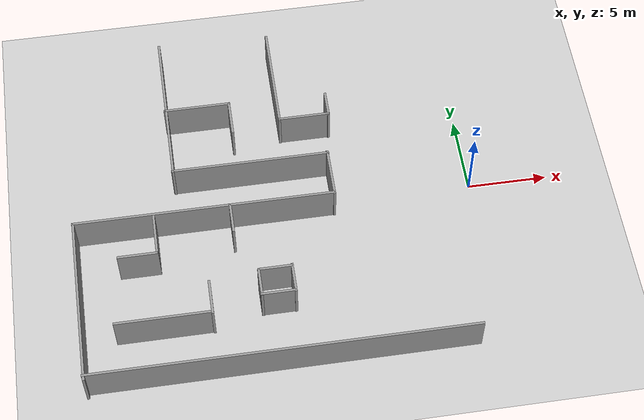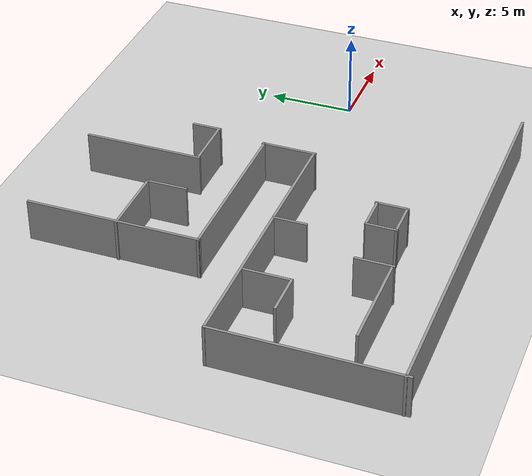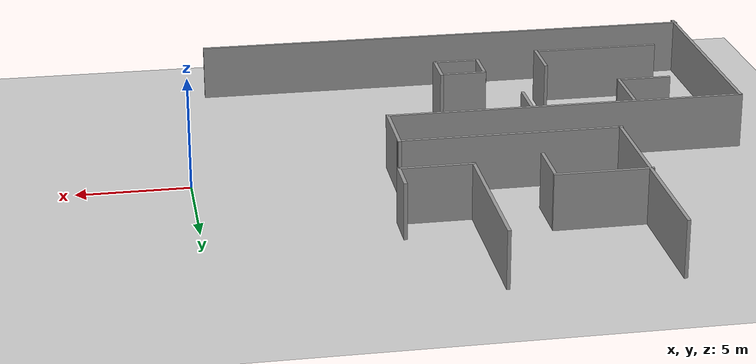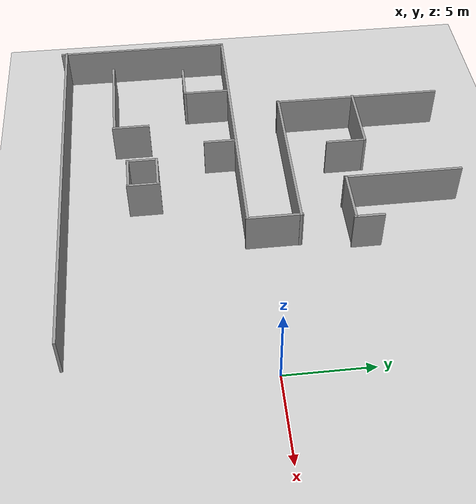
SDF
<sdf version="1.7">
 <world name="default">
  <model name="ground_plane">
   <static>1</static>
   <link name="link">
    <collision name="collision">
     <geometry><plane><normal>0 0 1</normal><size>100 100</size></plane></geometry>
     <surface>
      <contact><collide_bitmask>65535</collide_bitmask></contact>
      <friction><ode><mu>100</mu><mu2>50</mu2></ode></friction>
     </surface>
    </collision>
    <visual name="visual">
     <cast_shadows>0</cast_shadows>
     <geometry><plane><normal>0 0 1</normal><size>100 100</size></plane></geometry>
     <material>
      <script><uri>file://media/materials/scripts/gazebo.material</uri><name>Gazebo/Grey</name></script>
     </material>
    </visual>
   </link>
  </model>
  <model name="newwoorld">
   <link name="Wall_19">
    <pose>-17.4304 6.21066 0 0 0 -1.5708</pose>
    <inertial>
     <inertia><ixx>0</ixx><ixy>0</ixy><ixz>0</ixz><iyy>0</iyy><iyz>0</iyz><izz>0</izz></inertia>
     <mass>0</mass>
    </inertial>
    <visual name="Wall_19_Visual">
     <pose>0 0 1.25 0 -0 0</pose>
     <geometry><box><size>10.1278 0.15 2.5</size></box></geometry>
     <material>
      <script><uri>file://media/materials/scripts/gazebo.material</uri><name>Gazebo/Grey</name></script>
      <ambient>1 1 1 1</ambient>
      <shader type="pixel"/>
     </material>
     <meta><layer>0</layer></meta>
    </visual>
    <collision name="Wall_19_Collision">
     <pose>0 0 1.25 0 -0 0</pose>
     <geometry><box><size>10.1278 0.15 2.5</size></box></geometry>
     <surface>
      <friction>
       <ode><mu>1</mu><mu2>1</mu2><fdir1>0 0 0</fdir1><slip1>0</slip1><slip2>0</slip2></ode>
       <torsional>
        <coefficient>1</coefficient>
        <patch_radius>0</patch_radius>
        <surface_radius>0</surface_radius>
        <use_patch_radius>1</use_patch_radius>
        <ode><slip>0</slip></ode>
       </torsional>
      </friction>
      <bounce><restitution_coefficient>0</restitution_coefficient><threshold>1e+06</threshold></bounce>
      <contact>
       <collide_without_contact>0</collide_without_contact>
       <collide_without_contact_bitmask>1</collide_without_contact_bitmask>
       <collide_bitmask>1</collide_bitmask>
       <ode>
        <soft_cfm>0</soft_cfm>
        <soft_erp>0.2</soft_erp>
        <kp>1e+13</kp>
        <kd>1</kd>
        <max_vel>0.01</max_vel>
        <min_depth>0</min_depth>
       </ode>
       <bullet>
        <split_impulse>1</split_impulse>
        <split_impulse_penetration_threshold>-0.01</split_impulse_penetration_threshold>
        <soft_cfm>0</soft_cfm>
        <soft_erp>0.2</soft_erp>
        <kp>1e+13</kp>
        <kd>1</kd>
       </bullet>
      </contact>
     </surface>
    </collision>
   </link>
   <link name="Wall_20">
    <pose>-12.5874 1.25548 0 0 -0 0</pose>
    <inertial>
     <inertia><ixx>0</ixx><ixy>0</ixy><ixz>0</ixz><iyy>0</iyy><iyz>0</iyz><izz>0</izz></inertia>
     <mass>0</mass>
    </inertial>
    <visual name="Wall_20_Visual">
     <pose>0 0 1.25 0 -0 0</pose>
     <geometry><box><size>9.89817 0.15 2.5</size></box></geometry>
     <material>
      <script><uri>file://media/materials/scripts/gazebo.material</uri><name>Gazebo/Grey</name></script>
      <ambient>1 1 1 1</ambient>
      <shader type="pixel"/>
     </material>
     <meta><layer>0</layer></meta>
    </visual>
    <collision name="Wall_20_Collision">
     <pose>0 0 1.25 0 -0 0</pose>
     <geometry><box><size>9.89817 0.15 2.5</size></box></geometry>
     <surface>
      <friction>
       <ode><mu>1</mu><mu2>1</mu2><fdir1>0 0 0</fdir1><slip1>0</slip1><slip2>0</slip2></ode>
       <torsional>
        <coefficient>1</coefficient>
        <patch_radius>0</patch_radius>
        <surface_radius>0</surface_radius>
        <use_patch_radius>1</use_patch_radius>
        <ode><slip>0</slip></ode>
       </torsional>
      </friction>
      <bounce><restitution_coefficient>0</restitution_coefficient><threshold>1e+06</threshold></bounce>
      <contact>
       <collide_without_contact>0</collide_without_contact>
       <collide_without_contact_bitmask>1</collide_without_contact_bitmask>
       <collide_bitmask>1</collide_bitmask>
       <ode>
        <soft_cfm>0</soft_cfm>
        <soft_erp>0.2</soft_erp>
        <kp>1e+13</kp>
        <kd>1</kd>
        <max_vel>0.01</max_vel>
        <min_depth>0</min_depth>
       </ode>
       <bullet>
        <split_impulse>1</split_impulse>
        <split_impulse_penetration_threshold>-0.01</split_impulse_penetration_threshold>
        <soft_cfm>0</soft_cfm>
        <soft_erp>0.2</soft_erp>
        <kp>1e+13</kp>
        <kd>1</kd>
       </bullet>
      </contact>
     </surface>
    </collision>
   </link>
   <link name="Wall_21">
    <pose>-7.73266 -0.233967 0 0 0 -1.5708</pose>
    <visual name="Wall_21_Visual">
     <pose>0 0 1.25 0 -0 0</pose>
     <geometry><box><size>3.25 0.15 2.5</size></box></geometry>
     <material>
      <script><uri>file://media/materials/scripts/gazebo.material</uri><name>Gazebo/Grey</name></script>
      <ambient>1 1 1 1</ambient>
      <shader type="pixel"/>
     </material>
     <meta><layer>0</layer></meta>
    </visual>
    <collision name="Wall_21_Collision">
     <pose>0 0 1.25 0 -0 0</pose>
     <geometry><box><size>3.25 0.15 2.5</size></box></geometry>
     <surface>
      <friction>
       <ode><mu>1</mu><mu2>1</mu2><fdir1>0 0 0</fdir1><slip1>0</slip1><slip2>0</slip2></ode>
       <torsional>
        <coefficient>1</coefficient>
        <patch_radius>0</patch_radius>
        <surface_radius>0</surface_radius>
        <use_patch_radius>1</use_patch_radius>
        <ode><slip>0</slip></ode>
       </torsional>
      </friction>
      <bounce><restitution_coefficient>0</restitution_coefficient><threshold>1e+06</threshold></bounce>
      <contact>
       <collide_without_contact>0</collide_without_contact>
       <collide_without_contact_bitmask>1</collide_without_contact_bitmask>
       <collide_bitmask>1</collide_bitmask>
       <ode>
        <soft_cfm>0</soft_cfm>
        <soft_erp>0.2</soft_erp>
        <kp>1e+13</kp>
        <kd>1</kd>
        <max_vel>0.01</max_vel>
        <min_depth>0</min_depth>
       </ode>
       <bullet>
        <split_impulse>1</split_impulse>
        <split_impulse_penetration_threshold>-0.01</split_impulse_penetration_threshold>
        <soft_cfm>0</soft_cfm>
        <soft_erp>0.2</soft_erp>
        <kp>1e+13</kp>
        <kd>1</kd>
       </bullet>
      </contact>
     </surface>
    </collision>
   </link>
   <link name="Wall_22">
    <pose>-15.8089 -1.73498 0 0 -0 3.14159</pose>
    <inertial>
     <inertia><ixx>0</ixx><ixy>0</ixy><ixz>0</ixz><iyy>0</iyy><iyz>0</iyz><izz>0</izz></inertia>
     <mass>0</mass>
    </inertial>
    <visual name="Wall_22_Visual">
     <pose>0 0 1.25 0 -0 0</pose>
     <geometry><box><size>16.191 0.15 2.5</size></box></geometry>
     <material>
      <script><uri>file://media/materials/scripts/gazebo.material</uri><name>Gazebo/Grey</name></script>
      <ambient>1 1 1 1</ambient>
      <shader type="pixel"/>
     </material>
     <meta><layer>0</layer></meta>
    </visual>
    <collision name="Wall_22_Collision">
     <pose>0 0 1.25 0 -0 0</pose>
     <geometry><box><size>16.191 0.15 2.5</size></box></geometry>
     <surface>
      <friction>
       <ode><mu>1</mu><mu2>1</mu2><fdir1>0 0 0</fdir1><slip1>0</slip1><slip2>0</slip2></ode>
       <torsional>
        <coefficient>1</coefficient>
        <patch_radius>0</patch_radius>
        <surface_radius>0</surface_radius>
        <use_patch_radius>1</use_patch_radius>
        <ode><slip>0</slip></ode>
       </torsional>
      </friction>
      <bounce><restitution_coefficient>0</restitution_coefficient><threshold>1e+06</threshold></bounce>
      <contact>
       <collide_without_contact>0</collide_without_contact>
       <collide_without_contact_bitmask>1</collide_without_contact_bitmask>
       <collide_bitmask>1</collide_bitmask>
       <ode>
        <soft_cfm>0</soft_cfm>
        <soft_erp>0.2</soft_erp>
        <kp>1e+13</kp>
        <kd>1</kd>
        <max_vel>0.01</max_vel>
        <min_depth>0</min_depth>
       </ode>
       <bullet>
        <split_impulse>1</split_impulse>
        <split_impulse_penetration_threshold>-0.01</split_impulse_penetration_threshold>
        <soft_cfm>0</soft_cfm>
        <soft_erp>0.2</soft_erp>
        <kp>1e+13</kp>
        <kd>1</kd>
       </bullet>
      </contact>
     </surface>
    </collision>
   </link>
   <link name="Wall_23">
    <pose>-23.8122 -7.0124 0 0 0 -1.5708</pose>
    <inertial>
     <inertia><ixx>0</ixx><ixy>0</ixy><ixz>0</ixz><iyy>0</iyy><iyz>0</iyz><izz>0</izz></inertia>
     <mass>0</mass>
    </inertial>
    <visual name="Wall_23_Visual">
     <pose>0 0 1.25 0 -0 0</pose>
     <geometry><box><size>10.6789 0.15 2.5</size></box></geometry>
     <material>
      <script><uri>file://media/materials/scripts/gazebo.material</uri><name>Gazebo/Grey</name></script>
      <ambient>1 1 1 1</ambient>
      <shader type="pixel"/>
     </material>
     <meta><layer>0</layer></meta>
    </visual>
    <collision name="Wall_23_Collision">
     <pose>0 0 1.25 0 -0 0</pose>
     <geometry><box><size>10.6789 0.15 2.5</size></box></geometry>
     <surface>
      <friction>
       <ode><mu>1</mu><mu2>1</mu2><fdir1>0 0 0</fdir1><slip1>0</slip1><slip2>0</slip2></ode>
       <torsional>
        <coefficient>1</coefficient>
        <patch_radius>0</patch_radius>
        <surface_radius>0</surface_radius>
        <use_patch_radius>1</use_patch_radius>
        <ode><slip>0</slip></ode>
       </torsional>
      </friction>
      <bounce><restitution_coefficient>0</restitution_coefficient><threshold>1e+06</threshold></bounce>
      <contact>
       <collide_without_contact>0</collide_without_contact>
       <collide_without_contact_bitmask>1</collide_without_contact_bitmask>
       <collide_bitmask>1</collide_bitmask>
       <ode>
        <soft_cfm>0</soft_cfm>
        <soft_erp>0.2</soft_erp>
        <kp>1e+13</kp>
        <kd>1</kd>
        <max_vel>0.01</max_vel>
        <min_depth>0</min_depth>
       </ode>
       <bullet>
        <split_impulse>1</split_impulse>
        <split_impulse_penetration_threshold>-0.01</split_impulse_penetration_threshold>
        <soft_cfm>0</soft_cfm>
        <soft_erp>0.2</soft_erp>
        <kp>1e+13</kp>
        <kd>1</kd>
       </bullet>
      </contact>
     </surface>
    </collision>
   </link>
   <link name="Wall_24">
    <pose>-12.1798 -12.0229 0 0 -0 0</pose>
    <visual name="Wall_24_Visual">
     <pose>0 0 1.25 0 -0 0</pose>
     <geometry><box><size>23.5 0.15 2.5</size></box></geometry>
     <material>
      <script><uri>file://media/materials/scripts/gazebo.material</uri><name>Gazebo/Grey</name></script>
      <ambient>1 1 1 1</ambient>
      <shader type="pixel"/>
     </material>
     <meta><layer>0</layer></meta>
    </visual>
    <collision name="Wall_24_Collision">
     <pose>0 0 1.25 0 -0 0</pose>
     <geometry><box><size>23.5 0.15 2.5</size></box></geometry>
     <surface>
      <friction>
       <ode><mu>1</mu><mu2>1</mu2><fdir1>0 0 0</fdir1><slip1>0</slip1><slip2>0</slip2></ode>
       <torsional>
        <coefficient>1</coefficient>
        <patch_radius>0</patch_radius>
        <surface_radius>0</surface_radius>
        <use_patch_radius>1</use_patch_radius>
        <ode><slip>0</slip></ode>
       </torsional>
      </friction>
      <bounce><restitution_coefficient>0</restitution_coefficient><threshold>1e+06</threshold></bounce>
      <contact>
       <collide_without_contact>0</collide_without_contact>
       <collide_without_contact_bitmask>1</collide_without_contact_bitmask>
       <collide_bitmask>1</collide_bitmask>
       <ode>
        <soft_cfm>0</soft_cfm>
        <soft_erp>0.2</soft_erp>
        <kp>1e+13</kp>
        <kd>1</kd>
        <max_vel>0.01</max_vel>
        <min_depth>0</min_depth>
       </ode>
       <bullet>
        <split_impulse>1</split_impulse>
        <split_impulse_penetration_threshold>-0.01</split_impulse_penetration_threshold>
        <soft_cfm>0</soft_cfm>
        <soft_erp>0.2</soft_erp>
        <kp>1e+13</kp>
        <kd>1</kd>
       </bullet>
      </contact>
     </surface>
    </collision>
   </link>
   <link name="Wall_36">
    <pose>-18.9181 -3.19701 0 0 0 -1.5708</pose>
    <visual name="Wall_36_Visual">
     <pose>0 0 1.25 0 -0 0</pose>
     <geometry><box><size>2.75 0.15 2.5</size></box></geometry>
     <material>
      <script><uri>file://media/materials/scripts/gazebo.material</uri><name>Gazebo/Grey</name></script>
      <ambient>1 1 1 1</ambient>
      <shader type="pixel"/>
     </material>
     <meta><layer>0</layer></meta>
    </visual>
    <collision name="Wall_36_Collision">
     <pose>0 0 1.25 0 -0 0</pose>
     <geometry><box><size>2.75 0.15 2.5</size></box></geometry>
     <surface>
      <friction>
       <ode><mu>1</mu><mu2>1</mu2><fdir1>0 0 0</fdir1><slip1>0</slip1><slip2>0</slip2></ode>
       <torsional>
        <coefficient>1</coefficient>
        <patch_radius>0</patch_radius>
        <surface_radius>0</surface_radius>
        <use_patch_radius>1</use_patch_radius>
        <ode><slip>0</slip></ode>
       </torsional>
      </friction>
      <bounce><restitution_coefficient>0</restitution_coefficient><threshold>1e+06</threshold></bounce>
      <contact>
       <collide_without_contact>0</collide_without_contact>
       <collide_without_contact_bitmask>1</collide_without_contact_bitmask>
       <collide_bitmask>1</collide_bitmask>
       <ode>
        <soft_cfm>0</soft_cfm>
        <soft_erp>0.2</soft_erp>
        <kp>1e+13</kp>
        <kd>1</kd>
        <max_vel>0.01</max_vel>
        <min_depth>0</min_depth>
       </ode>
       <bullet>
        <split_impulse>1</split_impulse>
        <split_impulse_penetration_threshold>-0.01</split_impulse_penetration_threshold>
        <soft_cfm>0</soft_cfm>
        <soft_erp>0.2</soft_erp>
        <kp>1e+13</kp>
        <kd>1</kd>
       </bullet>
      </contact>
     </surface>
    </collision>
   </link>
   <link name="Wall_37">
    <pose>-20.0931 -4.49701 0 0 -0 3.14159</pose>
    <visual name="Wall_37_Visual">
     <pose>0 0 1.25 0 -0 0</pose>
     <geometry><box><size>2.5 0.15 2.5</size></box></geometry>
     <material>
      <script><uri>file://media/materials/scripts/gazebo.material</uri><name>Gazebo/Grey</name></script>
      <ambient>1 1 1 1</ambient>
      <shader type="pixel"/>
     </material>
     <meta><layer>0</layer></meta>
    </visual>
    <collision name="Wall_37_Collision">
     <pose>0 0 1.25 0 -0 0</pose>
     <geometry><box><size>2.5 0.15 2.5</size></box></geometry>
     <surface>
      <friction>
       <ode><mu>1</mu><mu2>1</mu2><fdir1>0 0 0</fdir1><slip1>0</slip1><slip2>0</slip2></ode>
       <torsional>
        <coefficient>1</coefficient>
        <patch_radius>0</patch_radius>
        <surface_radius>0</surface_radius>
        <use_patch_radius>1</use_patch_radius>
        <ode><slip>0</slip></ode>
       </torsional>
      </friction>
      <bounce><restitution_coefficient>0</restitution_coefficient><threshold>1e+06</threshold></bounce>
      <contact>
       <collide_without_contact>0</collide_without_contact>
       <collide_without_contact_bitmask>1</collide_without_contact_bitmask>
       <collide_bitmask>1</collide_bitmask>
       <ode>
        <soft_cfm>0</soft_cfm>
        <soft_erp>0.2</soft_erp>
        <kp>1e+13</kp>
        <kd>1</kd>
        <max_vel>0.01</max_vel>
        <min_depth>0</min_depth>
       </ode>
       <bullet>
        <split_impulse>1</split_impulse>
        <split_impulse_penetration_threshold>-0.01</split_impulse_penetration_threshold>
        <soft_cfm>0</soft_cfm>
        <soft_erp>0.2</soft_erp>
        <kp>1e+13</kp>
        <kd>1</kd>
       </bullet>
      </contact>
     </surface>
    </collision>
   </link>
   <link name="Wall_41">
    <pose>-16.0543 -7.96754 0 0 0 -1.5708</pose>
    <visual name="Wall_41_Visual">
     <pose>0 0 1.25 0 -0 0</pose>
     <geometry><box><size>2.25 0.15 2.5</size></box></geometry>
     <material>
      <script><uri>file://media/materials/scripts/gazebo.material</uri><name>Gazebo/Grey</name></script>
      <ambient>1 1 1 1</ambient>
      <shader type="pixel"/>
     </material>
     <meta><layer>0</layer></meta>
    </visual>
    <collision name="Wall_41_Collision">
     <pose>0 0 1.25 0 -0 0</pose>
     <geometry><box><size>2.25 0.15 2.5</size></box></geometry>
     <surface>
      <friction>
       <ode><mu>1</mu><mu2>1</mu2><fdir1>0 0 0</fdir1><slip1>0</slip1><slip2>0</slip2></ode>
       <torsional>
        <coefficient>1</coefficient>
        <patch_radius>0</patch_radius>
        <surface_radius>0</surface_radius>
        <use_patch_radius>1</use_patch_radius>
        <ode><slip>0</slip></ode>
       </torsional>
      </friction>
      <bounce><restitution_coefficient>0</restitution_coefficient><threshold>1e+06</threshold></bounce>
      <contact>
       <collide_without_contact>0</collide_without_contact>
       <collide_without_contact_bitmask>1</collide_without_contact_bitmask>
       <collide_bitmask>1</collide_bitmask>
       <ode>
        <soft_cfm>0</soft_cfm>
        <soft_erp>0.2</soft_erp>
        <kp>1e+13</kp>
        <kd>1</kd>
        <max_vel>0.01</max_vel>
        <min_depth>0</min_depth>
       </ode>
       <bullet>
        <split_impulse>1</split_impulse>
        <split_impulse_penetration_threshold>-0.01</split_impulse_penetration_threshold>
        <soft_cfm>0</soft_cfm>
        <soft_erp>0.2</soft_erp>
        <kp>1e+13</kp>
        <kd>1</kd>
       </bullet>
      </contact>
     </surface>
    </collision>
   </link>
   <link name="Wall_43">
    <pose>-19.0185 -8.95505 0 0 -0 3.14159</pose>
    <visual name="Wall_43_Visual">
     <pose>0 0 1.25 0 -0 0</pose>
     <geometry><box><size>5.75 0.15 2.5</size></box></geometry>
     <material>
      <script><uri>file://media/materials/scripts/gazebo.material</uri><name>Gazebo/Grey</name></script>
      <ambient>1 1 1 1</ambient>
      <shader type="pixel"/>
     </material>
     <meta><layer>0</layer></meta>
    </visual>
    <collision name="Wall_43_Collision">
     <pose>0 0 1.25 0 -0 0</pose>
     <geometry><box><size>5.75 0.15 2.5</size></box></geometry>
     <surface>
      <friction>
       <ode><mu>1</mu><mu2>1</mu2><fdir1>0 0 0</fdir1><slip1>0</slip1><slip2>0</slip2></ode>
       <torsional>
        <coefficient>1</coefficient>
        <patch_radius>0</patch_radius>
        <surface_radius>0</surface_radius>
        <use_patch_radius>1</use_patch_radius>
        <ode><slip>0</slip></ode>
       </torsional>
      </friction>
      <bounce><restitution_coefficient>0</restitution_coefficient><threshold>1e+06</threshold></bounce>
      <contact>
       <collide_without_contact>0</collide_without_contact>
       <collide_without_contact_bitmask>1</collide_without_contact_bitmask>
       <collide_bitmask>1</collide_bitmask>
       <ode>
        <soft_cfm>0</soft_cfm>
        <soft_erp>0.2</soft_erp>
        <kp>1e+13</kp>
        <kd>1</kd>
        <max_vel>0.01</max_vel>
        <min_depth>0</min_depth>
       </ode>
       <bullet>
        <split_impulse>1</split_impulse>
        <split_impulse_penetration_threshold>-0.01</split_impulse_penetration_threshold>
        <soft_cfm>0</soft_cfm>
        <soft_erp>0.2</soft_erp>
        <kp>1e+13</kp>
        <kd>1</kd>
       </bullet>
      </contact>
     </surface>
    </collision>
   </link>
   <link name="Wall_52">
    <pose>-12.0568 -6.52947 0 0 -0 3.14159</pose>
    <inertial>
     <inertia><ixx>0</ixx><ixy>0</ixy><ixz>0</ixz><iyy>0</iyy><iyz>0</iyz><izz>0</izz></inertia>
     <mass>0</mass>
    </inertial>
    <visual name="Wall_52_Visual">
     <pose>0 0 1.25 0 -0 0</pose>
     <geometry><box><size>2.08662 0.15 2.5</size></box></geometry>
     <material>
      <script><uri>file://media/materials/scripts/gazebo.material</uri><name>Gazebo/Grey</name></script>
      <ambient>1 1 1 1</ambient>
      <shader type="pixel"/>
     </material>
     <meta><layer>0</layer></meta>
    </visual>
    <collision name="Wall_52_Collision">
     <pose>0 0 1.25 0 -0 0</pose>
     <geometry><box><size>2.08662 0.15 2.5</size></box></geometry>
     <surface>
      <friction>
       <ode><mu>1</mu><mu2>1</mu2><fdir1>0 0 0</fdir1><slip1>0</slip1><slip2>0</slip2></ode>
       <torsional>
        <coefficient>1</coefficient>
        <patch_radius>0</patch_radius>
        <surface_radius>0</surface_radius>
        <use_patch_radius>1</use_patch_radius>
        <ode><slip>0</slip></ode>
       </torsional>
      </friction>
      <bounce><restitution_coefficient>0</restitution_coefficient><threshold>1e+06</threshold></bounce>
      <contact>
       <collide_without_contact>0</collide_without_contact>
       <collide_without_contact_bitmask>1</collide_without_contact_bitmask>
       <collide_bitmask>1</collide_bitmask>
       <ode>
        <soft_cfm>0</soft_cfm>
        <soft_erp>0.2</soft_erp>
        <kp>1e+13</kp>
        <kd>1</kd>
        <max_vel>0.01</max_vel>
        <min_depth>0</min_depth>
       </ode>
       <bullet>
        <split_impulse>1</split_impulse>
        <split_impulse_penetration_threshold>-0.01</split_impulse_penetration_threshold>
        <soft_cfm>0</soft_cfm>
        <soft_erp>0.2</soft_erp>
        <kp>1e+13</kp>
        <kd>1</kd>
       </bullet>
      </contact>
     </surface>
    </collision>
   </link>
   <link name="Wall_53">
    <pose>-13.0415 -7.42065 0 0 0 -1.5708</pose>
    <inertial>
     <inertia><ixx>0</ixx><ixy>0</ixy><ixz>0</ixz><iyy>0</iyy><iyz>0</iyz><izz>0</izz></inertia>
     <mass>0</mass>
    </inertial>
    <visual name="Wall_53_Visual">
     <pose>0 0 1.25 0 -0 0</pose>
     <geometry><box><size>1.80944 0.15 2.5</size></box></geometry>
     <material>
      <script><uri>file://media/materials/scripts/gazebo.material</uri><name>Gazebo/Grey</name></script>
      <ambient>1 1 1 1</ambient>
      <shader type="pixel"/>
     </material>
     <meta><layer>0</layer></meta>
    </visual>
    <collision name="Wall_53_Collision">
     <pose>0 0 1.25 0 -0 0</pose>
     <geometry><box><size>1.80944 0.15 2.5</size></box></geometry>
     <surface>
      <friction>
       <ode><mu>1</mu><mu2>1</mu2><fdir1>0 0 0</fdir1><slip1>0</slip1><slip2>0</slip2></ode>
       <torsional>
        <coefficient>1</coefficient>
        <patch_radius>0</patch_radius>
        <surface_radius>0</surface_radius>
        <use_patch_radius>1</use_patch_radius>
        <ode><slip>0</slip></ode>
       </torsional>
      </friction>
      <bounce><restitution_coefficient>0</restitution_coefficient><threshold>1e+06</threshold></bounce>
      <contact>
       <collide_without_contact>0</collide_without_contact>
       <collide_without_contact_bitmask>1</collide_without_contact_bitmask>
       <collide_bitmask>1</collide_bitmask>
       <ode>
        <soft_cfm>0</soft_cfm>
        <soft_erp>0.2</soft_erp>
        <kp>1e+13</kp>
        <kd>1</kd>
        <max_vel>0.01</max_vel>
        <min_depth>0</min_depth>
       </ode>
       <bullet>
        <split_impulse>1</split_impulse>
        <split_impulse_penetration_threshold>-0.01</split_impulse_penetration_threshold>
        <soft_cfm>0</soft_cfm>
        <soft_erp>0.2</soft_erp>
        <kp>1e+13</kp>
        <kd>1</kd>
       </bullet>
      </contact>
     </surface>
    </collision>
   </link>
   <link name="Wall_54">
    <pose>-12.0727 -8.22404 0 0 -0 0</pose>
    <inertial>
     <inertia><ixx>0</ixx><ixy>0</ixy><ixz>0</ixz><iyy>0</iyy><iyz>0</iyz><izz>0</izz></inertia>
     <mass>0</mass>
    </inertial>
    <visual name="Wall_54_Visual">
     <pose>0 0 1.25 0 -0 0</pose>
     <geometry><box><size>2.09827 0.15 2.5</size></box></geometry>
     <material>
      <script><uri>file://media/materials/scripts/gazebo.material</uri><name>Gazebo/Grey</name></script>
      <ambient>1 1 1 1</ambient>
      <shader type="pixel"/>
     </material>
     <meta><layer>0</layer></meta>
    </visual>
    <collision name="Wall_54_Collision">
     <pose>0 0 1.25 0 -0 0</pose>
     <geometry><box><size>2.09827 0.15 2.5</size></box></geometry>
     <surface>
      <friction>
       <ode><mu>1</mu><mu2>1</mu2><fdir1>0 0 0</fdir1><slip1>0</slip1><slip2>0</slip2></ode>
       <torsional>
        <coefficient>1</coefficient>
        <patch_radius>0</patch_radius>
        <surface_radius>0</surface_radius>
        <use_patch_radius>1</use_patch_radius>
        <ode><slip>0</slip></ode>
       </torsional>
      </friction>
      <bounce><restitution_coefficient>0</restitution_coefficient><threshold>1e+06</threshold></bounce>
      <contact>
       <collide_without_contact>0</collide_without_contact>
       <collide_without_contact_bitmask>1</collide_without_contact_bitmask>
       <collide_bitmask>1</collide_bitmask>
       <ode>
        <soft_cfm>0</soft_cfm>
        <soft_erp>0.2</soft_erp>
        <kp>1e+13</kp>
        <kd>1</kd>
        <max_vel>0.01</max_vel>
        <min_depth>0</min_depth>
       </ode>
       <bullet>
        <split_impulse>1</split_impulse>
        <split_impulse_penetration_threshold>-0.01</split_impulse_penetration_threshold>
        <soft_cfm>0</soft_cfm>
        <soft_erp>0.2</soft_erp>
        <kp>1e+13</kp>
        <kd>1</kd>
       </bullet>
      </contact>
     </surface>
    </collision>
   </link>
   <link name="Wall_55">
    <pose>-11.0171 -7.36639 0 0 -0 1.5708</pose>
    <inertial>
     <inertia><ixx>0</ixx><ixy>0</ixy><ixz>0</ixz><iyy>0</iyy><iyz>0</iyz><izz>0</izz></inertia>
     <mass>0</mass>
    </inertial>
    <visual name="Wall_55_Visual">
     <pose>0 0 1.25 0 -0 0</pose>
     <geometry><box><size>1.93497 0.15 2.5</size></box></geometry>
     <material>
      <script><uri>file://media/materials/scripts/gazebo.material</uri><name>Gazebo/Grey</name></script>
      <ambient>1 1 1 1</ambient>
      <shader type="pixel"/>
     </material>
     <meta><layer>0</layer></meta>
    </visual>
    <collision name="Wall_55_Collision">
     <pose>0 0 1.25 0 -0 0</pose>
     <geometry><box><size>1.93497 0.15 2.5</size></box></geometry>
     <surface>
      <friction>
       <ode><mu>1</mu><mu2>1</mu2><fdir1>0 0 0</fdir1><slip1>0</slip1><slip2>0</slip2></ode>
       <torsional>
        <coefficient>1</coefficient>
        <patch_radius>0</patch_radius>
        <surface_radius>0</surface_radius>
        <use_patch_radius>1</use_patch_radius>
        <ode><slip>0</slip></ode>
       </torsional>
      </friction>
      <bounce><restitution_coefficient>0</restitution_coefficient><threshold>1e+06</threshold></bounce>
      <contact>
       <collide_without_contact>0</collide_without_contact>
       <collide_without_contact_bitmask>1</collide_without_contact_bitmask>
       <collide_bitmask>1</collide_bitmask>
       <ode>
        <soft_cfm>0</soft_cfm>
        <soft_erp>0.2</soft_erp>
        <kp>1e+13</kp>
        <kd>1</kd>
        <max_vel>0.01</max_vel>
        <min_depth>0</min_depth>
       </ode>
       <bullet>
        <split_impulse>1</split_impulse>
        <split_impulse_penetration_threshold>-0.01</split_impulse_penetration_threshold>
        <soft_cfm>0</soft_cfm>
        <soft_erp>0.2</soft_erp>
        <kp>1e+13</kp>
        <kd>1</kd>
       </bullet>
      </contact>
     </surface>
    </collision>
   </link>
   <link name="Wall_60">
    <pose>-14.2034 -2.68196 0 0 0 -1.5708</pose>
    <inertial>
     <inertia><ixx>0</ixx><ixy>0</ixy><ixz>0</ixz><iyy>0</iyy><iyz>0</iyz><izz>0</izz></inertia>
     <mass>0</mass>
    </inertial>
    <visual name="Wall_60_Visual">
     <pose>0 0 1.25 0 -0 0</pose>
     <geometry><box><size>1.95094 0.15 2.5</size></box></geometry>
     <material>
      <script><uri>file://media/materials/scripts/gazebo.material</uri><name>Gazebo/Grey</name></script>
      <ambient>1 1 1 1</ambient>
      <shader type="pixel"/>
     </material>
     <meta><layer>0</layer></meta>
    </visual>
    <collision name="Wall_60_Collision">
     <pose>0 0 1.25 0 -0 0</pose>
     <geometry><box><size>1.95094 0.15 2.5</size></box></geometry>
     <surface>
      <friction>
       <ode><mu>1</mu><mu2>1</mu2><fdir1>0 0 0</fdir1><slip1>0</slip1><slip2>0</slip2></ode>
       <torsional>
        <coefficient>1</coefficient>
        <patch_radius>0</patch_radius>
        <surface_radius>0</surface_radius>
        <use_patch_radius>1</use_patch_radius>
        <ode><slip>0</slip></ode>
       </torsional>
      </friction>
      <bounce><restitution_coefficient>0</restitution_coefficient><threshold>1e+06</threshold></bounce>
      <contact>
       <collide_without_contact>0</collide_without_contact>
       <collide_without_contact_bitmask>1</collide_without_contact_bitmask>
       <collide_bitmask>1</collide_bitmask>
       <ode>
        <soft_cfm>0</soft_cfm>
        <soft_erp>0.2</soft_erp>
        <kp>1e+13</kp>
        <kd>1</kd>
        <max_vel>0.01</max_vel>
        <min_depth>0</min_depth>
       </ode>
       <bullet>
        <split_impulse>1</split_impulse>
        <split_impulse_penetration_threshold>-0.01</split_impulse_penetration_threshold>
        <soft_cfm>0</soft_cfm>
        <soft_erp>0.2</soft_erp>
        <kp>1e+13</kp>
        <kd>1</kd>
       </bullet>
      </contact>
     </surface>
    </collision>
   </link>
   <link name="Wall_62">
    <pose>-15.4609 5.94786 0 0 -0 0</pose>
    <visual name="Wall_62_Visual">
     <pose>0 0 1.25 0 -0 0</pose>
     <geometry><box><size>4.25 0.15 2.5</size></box></geometry>
     <material>
      <script><uri>file://media/materials/scripts/gazebo.material</uri><name>Gazebo/Grey</name></script>
      <ambient>1 1 1 1</ambient>
      <shader type="pixel"/>
     </material>
     <meta><layer>0</layer></meta>
    </visual>
    <collision name="Wall_62_Collision">
     <pose>0 0 1.25 0 -0 0</pose>
     <geometry><box><size>4.25 0.15 2.5</size></box></geometry>
     <surface>
      <friction>
       <ode><mu>1</mu><mu2>1</mu2><fdir1>0 0 0</fdir1><slip1>0</slip1><slip2>0</slip2></ode>
       <torsional>
        <coefficient>1</coefficient>
        <patch_radius>0</patch_radius>
        <surface_radius>0</surface_radius>
        <use_patch_radius>1</use_patch_radius>
        <ode><slip>0</slip></ode>
       </torsional>
      </friction>
      <bounce><restitution_coefficient>0</restitution_coefficient><threshold>1e+06</threshold></bounce>
      <contact>
       <collide_without_contact>0</collide_without_contact>
       <collide_without_contact_bitmask>1</collide_without_contact_bitmask>
       <collide_bitmask>1</collide_bitmask>
       <ode>
        <soft_cfm>0</soft_cfm>
        <soft_erp>0.2</soft_erp>
        <kp>1e+13</kp>
        <kd>1</kd>
        <max_vel>0.01</max_vel>
        <min_depth>0</min_depth>
       </ode>
       <bullet>
        <split_impulse>1</split_impulse>
        <split_impulse_penetration_threshold>-0.01</split_impulse_penetration_threshold>
        <soft_cfm>0</soft_cfm>
        <soft_erp>0.2</soft_erp>
        <kp>1e+13</kp>
        <kd>1</kd>
       </bullet>
      </contact>
     </surface>
    </collision>
   </link>
   <link name="Wall_64">
    <pose>-13.4153 4.80175 0 0 0 -1.5708</pose>
    <inertial>
     <inertia><ixx>0</ixx><ixy>0</ixy><ixz>0</ixz><iyy>0</iyy><iyz>0</iyz><izz>0</izz></inertia>
     <mass>0</mass>
    </inertial>
    <visual name="Wall_64_Visual">
     <pose>0 0 1.25 0 -0 0</pose>
     <geometry><box><size>2.36657 0.15 2.5</size></box></geometry>
     <material>
      <script><uri>file://media/materials/scripts/gazebo.material</uri><name>Gazebo/Grey</name></script>
      <ambient>1 1 1 1</ambient>
      <shader type="pixel"/>
     </material>
     <meta><layer>0</layer></meta>
    </visual>
    <collision name="Wall_64_Collision">
     <pose>0 0 1.25 0 -0 0</pose>
     <geometry><box><size>2.36657 0.15 2.5</size></box></geometry>
     <surface>
      <friction>
       <ode><mu>1</mu><mu2>1</mu2><fdir1>0 0 0</fdir1><slip1>0</slip1><slip2>0</slip2></ode>
       <torsional>
        <coefficient>1</coefficient>
        <patch_radius>0</patch_radius>
        <surface_radius>0</surface_radius>
        <use_patch_radius>1</use_patch_radius>
        <ode><slip>0</slip></ode>
       </torsional>
      </friction>
      <bounce><restitution_coefficient>0</restitution_coefficient><threshold>1e+06</threshold></bounce>
      <contact>
       <collide_without_contact>0</collide_without_contact>
       <collide_without_contact_bitmask>1</collide_without_contact_bitmask>
       <collide_bitmask>1</collide_bitmask>
       <ode>
        <soft_cfm>0</soft_cfm>
        <soft_erp>0.2</soft_erp>
        <kp>1e+13</kp>
        <kd>1</kd>
        <max_vel>0.01</max_vel>
        <min_depth>0</min_depth>
       </ode>
       <bullet>
        <split_impulse>1</split_impulse>
        <split_impulse_penetration_threshold>-0.01</split_impulse_penetration_threshold>
        <soft_cfm>0</soft_cfm>
        <soft_erp>0.2</soft_erp>
        <kp>1e+13</kp>
        <kd>1</kd>
       </bullet>
      </contact>
     </surface>
    </collision>
   </link>
   <link name="Wall_68">
    <pose>-10.3661 7.60336 0 0 0 -1.5708</pose>
    <inertial>
     <inertia><ixx>0</ixx><ixy>0</ixy><ixz>0</ixz><iyy>0</iyy><iyz>0</iyz><izz>0</izz></inertia>
     <mass>0</mass>
    </inertial>
    <visual name="Wall_68_Visual">
     <pose>0 0 1.25 0 -0 0</pose>
     <geometry><box><size>6.94657 0.15 2.5</size></box></geometry>
     <material>
      <script><uri>file://media/materials/scripts/gazebo.material</uri><name>Gazebo/Grey</name></script>
      <ambient>1 1 1 1</ambient>
      <shader type="pixel"/>
     </material>
     <meta><layer>0</layer></meta>
    </visual>
    <collision name="Wall_68_Collision">
     <pose>0 0 1.25 0 -0 0</pose>
     <geometry><box><size>6.94657 0.15 2.5</size></box></geometry>
     <surface>
      <friction>
       <ode><mu>1</mu><mu2>1</mu2><fdir1>0 0 0</fdir1><slip1>0</slip1><slip2>0</slip2></ode>
       <torsional>
        <coefficient>1</coefficient>
        <patch_radius>0</patch_radius>
        <surface_radius>0</surface_radius>
        <use_patch_radius>1</use_patch_radius>
        <ode><slip>0</slip></ode>
       </torsional>
      </friction>
      <bounce><restitution_coefficient>0</restitution_coefficient><threshold>1e+06</threshold></bounce>
      <contact>
       <collide_without_contact>0</collide_without_contact>
       <collide_without_contact_bitmask>1</collide_without_contact_bitmask>
       <collide_bitmask>1</collide_bitmask>
       <ode>
        <soft_cfm>0</soft_cfm>
        <soft_erp>0.2</soft_erp>
        <kp>1e+13</kp>
        <kd>1</kd>
        <max_vel>0.01</max_vel>
        <min_depth>0</min_depth>
       </ode>
       <bullet>
        <split_impulse>1</split_impulse>
        <split_impulse_penetration_threshold>-0.01</split_impulse_penetration_threshold>
        <soft_cfm>0</soft_cfm>
        <soft_erp>0.2</soft_erp>
        <kp>1e+13</kp>
        <kd>1</kd>
       </bullet>
      </contact>
     </surface>
    </collision>
   </link>
   <link name="Wall_69">
    <pose>-8.78361 4.2556 0 0 -0 0</pose>
    <inertial>
     <inertia><ixx>0</ixx><ixy>0</ixy><ixz>0</ixz><iyy>0</iyy><iyz>0</iyz><izz>0</izz></inertia>
     <mass>0</mass>
    </inertial>
    <visual name="Wall_69_Visual">
     <pose>0 0 1.25 0 -0 0</pose>
     <geometry><box><size>3.24191 0.15 2.5</size></box></geometry>
     <material>
      <script><uri>file://media/materials/scripts/gazebo.material</uri><name>Gazebo/Grey</name></script>
      <ambient>1 1 1 1</ambient>
      <shader type="pixel"/>
     </material>
     <meta><layer>0</layer></meta>
    </visual>
    <collision name="Wall_69_Collision">
     <pose>0 0 1.25 0 -0 0</pose>
     <geometry><box><size>3.24191 0.15 2.5</size></box></geometry>
     <surface>
      <friction>
       <ode><mu>1</mu><mu2>1</mu2><fdir1>0 0 0</fdir1><slip1>0</slip1><slip2>0</slip2></ode>
       <torsional>
        <coefficient>1</coefficient>
        <patch_radius>0</patch_radius>
        <surface_radius>0</surface_radius>
        <use_patch_radius>1</use_patch_radius>
        <ode><slip>0</slip></ode>
       </torsional>
      </friction>
      <bounce><restitution_coefficient>0</restitution_coefficient><threshold>1e+06</threshold></bounce>
      <contact>
       <collide_without_contact>0</collide_without_contact>
       <collide_without_contact_bitmask>1</collide_without_contact_bitmask>
       <collide_bitmask>1</collide_bitmask>
       <ode>
        <soft_cfm>0</soft_cfm>
        <soft_erp>0.2</soft_erp>
        <kp>1e+13</kp>
        <kd>1</kd>
        <max_vel>0.01</max_vel>
        <min_depth>0</min_depth>
       </ode>
       <bullet>
        <split_impulse>1</split_impulse>
        <split_impulse_penetration_threshold>-0.01</split_impulse_penetration_threshold>
        <soft_cfm>0</soft_cfm>
        <soft_erp>0.2</soft_erp>
        <kp>1e+13</kp>
        <kd>1</kd>
       </bullet>
      </contact>
     </surface>
    </collision>
   </link>
   <link name="Wall_81">
    <pose>-7.21819 5.00375 0 0 -0 1.5708</pose>
    <visual name="Wall_81_Visual">
     <pose>0 0 1.25 0 -0 0</pose>
     <geometry><box><size>1.75 0.15 2.5</size></box></geometry>
     <material>
      <script><uri>file://media/materials/scripts/gazebo.material</uri><name>Gazebo/Grey</name></script>
      <ambient>1 1 1 1</ambient>
      <shader type="pixel"/>
     </material>
     <meta><layer>0</layer></meta>
    </visual>
    <collision name="Wall_81_Collision">
     <pose>0 0 1.25 0 -0 0</pose>
     <geometry><box><size>1.75 0.15 2.5</size></box></geometry>
     <surface>
      <friction>
       <ode><mu>1</mu><mu2>1</mu2><fdir1>0 0 0</fdir1><slip1>0</slip1><slip2>0</slip2></ode>
       <torsional>
        <coefficient>1</coefficient>
        <patch_radius>0</patch_radius>
        <surface_radius>0</surface_radius>
        <use_patch_radius>1</use_patch_radius>
        <ode><slip>0</slip></ode>
       </torsional>
      </friction>
      <bounce><restitution_coefficient>0</restitution_coefficient><threshold>1e+06</threshold></bounce>
      <contact>
       <collide_without_contact>0</collide_without_contact>
       <collide_without_contact_bitmask>1</collide_without_contact_bitmask>
       <collide_bitmask>1</collide_bitmask>
       <ode>
        <soft_cfm>0</soft_cfm>
        <soft_erp>0.2</soft_erp>
        <kp>1e+13</kp>
        <kd>1</kd>
        <max_vel>0.01</max_vel>
        <min_depth>0</min_depth>
       </ode>
       <bullet>
        <split_impulse>1</split_impulse>
        <split_impulse_penetration_threshold>-0.01</split_impulse_penetration_threshold>
        <soft_cfm>0</soft_cfm>
        <soft_erp>0.2</soft_erp>
        <kp>1e+13</kp>
        <kd>1</kd>
       </bullet>
      </contact>
     </surface>
    </collision>
   </link>
   <static>1</static>
   <pose>-0.999997 1 0 0 -0 0</pose>
  </model>
 </world>
</sdf>
